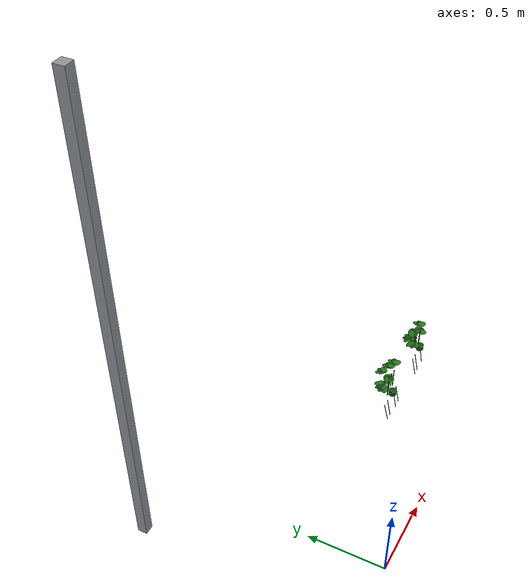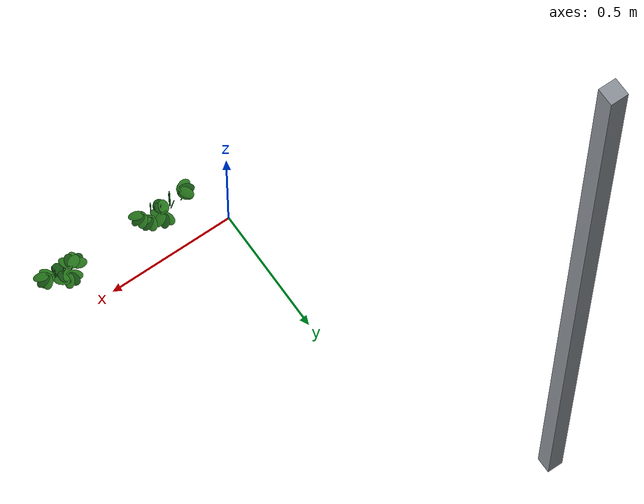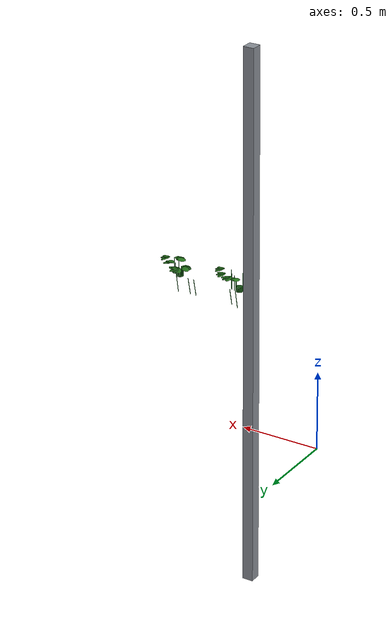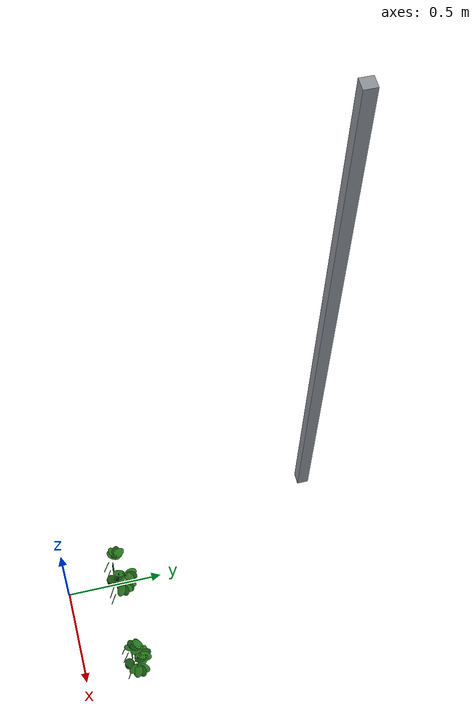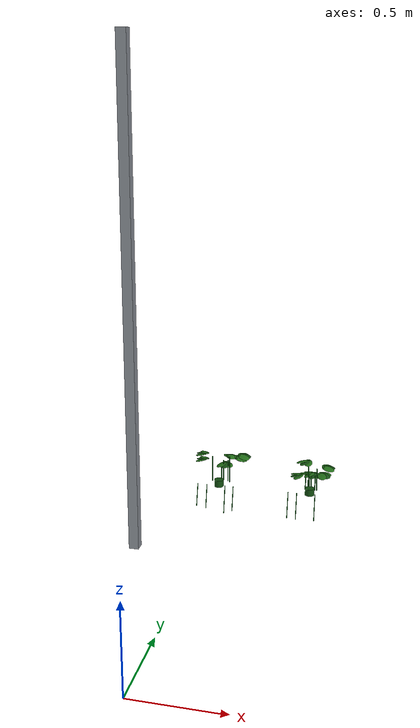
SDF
<sdf version="1.8">
 <world name="strawberry_greenhouse">
  <model name="post_0b">
   <static>true</static>
   <pose>-0.4000 1.4000 1.5000 0.0000 0.0000 0.0000</pose>
   <link name="link">
    <visual name="v">
     <geometry><box><size>0.0600 0.0600 3.0000</size></box></geometry>
     <material>
      <ambient>0.550 0.570 0.600 1</ambient>
      <diffuse>0.550 0.570 0.600 1</diffuse>
      <specular>0.1 0.1 0.1 1</specular>
     </material>
    </visual>
   </link>
  </model>
  <model name="plant_0">
   <static>true</static>
   <pose>0.4000 0.2100 1.0200 0.0000 0.0000 0.0000</pose>
   <link name="crown">
    <inertial>
     <mass>0.3</mass>
     <inertia>
      <ixx>1.250e-04</ixx>
      <iyy>1.250e-04</iyy>
      <izz>1.250e-04</izz>
      <ixy>0</ixy>
      <ixz>0</ixz>
      <iyz>0</iyz>
     </inertia>
    </inertial>
    <visual name="crown">
     <geometry><cylinder><radius>0.0200</radius><length>0.0300</length></cylinder></geometry>
     <material>
      <ambient>0.080 0.320 0.070 1</ambient>
      <diffuse>0.080 0.320 0.070 1</diffuse>
      <specular>0.1 0.1 0.1 1</specular>
     </material>
    </visual>
    <visual name="petiole_0">
     <pose>-0.0325 0.0180 0.0573 0.0000 0.0000 0.0000</pose>
     <geometry><cylinder><radius>0.0020</radius><length>0.1147</length></cylinder></geometry>
     <material>
      <ambient>0.100 0.500 0.120 1</ambient>
      <diffuse>0.100 0.500 0.120 1</diffuse>
      <specular>0.1 0.1 0.1 1</specular>
     </material>
    </visual>
    <visual name="leaf_0_0">
     <pose>-0.0758 0.0529 0.1147 0.2000 0.1500 2.1424</pose>
     <geometry><ellipsoid><radii>0.0280 0.0180 0.0030</radii></ellipsoid></geometry>
     <material>
      <ambient>0.140 0.450 0.100 1</ambient>
      <diffuse>0.140 0.450 0.100 1</diffuse>
      <specular>0.1 0.1 0.1 1</specular>
     </material>
    </visual>
    <visual name="leaf_0_1">
     <pose>-0.0841 0.0419 0.1147 0.2000 0.1500 2.8424</pose>
     <geometry><ellipsoid><radii>0.0280 0.0180 0.0030</radii></ellipsoid></geometry>
     <material>
      <ambient>0.080 0.320 0.070 1</ambient>
      <diffuse>0.080 0.320 0.070 1</diffuse>
      <specular>0.1 0.1 0.1 1</specular>
     </material>
    </visual>
    <visual name="leaf_0_2">
     <pose>-0.0834 0.0282 0.1147 0.2000 0.1500 3.5424</pose>
     <geometry><ellipsoid><radii>0.0280 0.0180 0.0030</radii></ellipsoid></geometry>
     <material>
      <ambient>0.140 0.450 0.100 1</ambient>
      <diffuse>0.140 0.450 0.100 1</diffuse>
      <specular>0.1 0.1 0.1 1</specular>
     </material>
    </visual>
    <visual name="petiole_1">
     <pose>-0.0319 0.0156 0.0456 0.0000 0.0000 0.0000</pose>
     <geometry><cylinder><radius>0.0020</radius><length>0.0911</length></cylinder></geometry>
     <material>
      <ambient>0.100 0.500 0.120 1</ambient>
      <diffuse>0.100 0.500 0.120 1</diffuse>
      <specular>0.1 0.1 0.1 1</specular>
     </material>
    </visual>
    <visual name="leaf_1_0">
     <pose>-0.0761 0.0471 0.0911 0.2000 0.1500 2.2258</pose>
     <geometry><ellipsoid><radii>0.0280 0.0180 0.0030</radii></ellipsoid></geometry>
     <material>
      <ambient>0.140 0.450 0.100 1</ambient>
      <diffuse>0.140 0.450 0.100 1</diffuse>
      <specular>0.1 0.1 0.1 1</specular>
     </material>
    </visual>
    <visual name="leaf_1_1">
     <pose>-0.0834 0.0355 0.0911 0.2000 0.1500 2.9258</pose>
     <geometry><ellipsoid><radii>0.0280 0.0180 0.0030</radii></ellipsoid></geometry>
     <material>
      <ambient>0.080 0.320 0.070 1</ambient>
      <diffuse>0.080 0.320 0.070 1</diffuse>
      <specular>0.1 0.1 0.1 1</specular>
     </material>
    </visual>
    <visual name="leaf_1_2">
     <pose>-0.0816 0.0219 0.0911 0.2000 0.1500 3.6258</pose>
     <geometry><ellipsoid><radii>0.0280 0.0180 0.0030</radii></ellipsoid></geometry>
     <material>
      <ambient>0.140 0.450 0.100 1</ambient>
      <diffuse>0.140 0.450 0.100 1</diffuse>
      <specular>0.1 0.1 0.1 1</specular>
     </material>
    </visual>
    <visual name="petiole_2">
     <pose>0.0131 0.0341 0.0470 0.0000 0.0000 0.0000</pose>
     <geometry><cylinder><radius>0.0020</radius><length>0.0941</length></cylinder></geometry>
     <material>
      <ambient>0.100 0.500 0.120 1</ambient>
      <diffuse>0.100 0.500 0.120 1</diffuse>
      <specular>0.1 0.1 0.1 1</specular>
     </material>
    </visual>
    <visual name="leaf_2_0">
     <pose>0.0441 0.0770 0.0941 0.2000 0.1500 0.4603</pose>
     <geometry><ellipsoid><radii>0.0280 0.0180 0.0030</radii></ellipsoid></geometry>
     <material>
      <ambient>0.140 0.450 0.100 1</ambient>
      <diffuse>0.140 0.450 0.100 1</diffuse>
      <specular>0.1 0.1 0.1 1</specular>
     </material>
    </visual>
    <visual name="leaf_2_1">
     <pose>0.0342 0.0865 0.0941 0.2000 0.1500 1.1603</pose>
     <geometry><ellipsoid><radii>0.0280 0.0180 0.0030</radii></ellipsoid></geometry>
     <material>
      <ambient>0.080 0.320 0.070 1</ambient>
      <diffuse>0.080 0.320 0.070 1</diffuse>
      <specular>0.1 0.1 0.1 1</specular>
     </material>
    </visual>
    <visual name="leaf_2_2">
     <pose>0.0205 0.0873 0.0941 0.2000 0.1500 1.8603</pose>
     <geometry><ellipsoid><radii>0.0280 0.0180 0.0030</radii></ellipsoid></geometry>
     <material>
      <ambient>0.140 0.450 0.100 1</ambient>
      <diffuse>0.140 0.450 0.100 1</diffuse>
      <specular>0.1 0.1 0.1 1</specular>
     </material>
    </visual>
    <visual name="petiole_3">
     <pose>0.0060 0.0272 0.0356 0.0000 0.0000 0.0000</pose>
     <geometry><cylinder><radius>0.0020</radius><length>0.0712</length></cylinder></geometry>
     <material>
      <ambient>0.100 0.500 0.120 1</ambient>
      <diffuse>0.100 0.500 0.120 1</diffuse>
      <specular>0.1 0.1 0.1 1</specular>
     </material>
    </visual>
    <visual name="leaf_3_0">
     <pose>0.0036 0.0363 0.0712 0.2000 0.1500 4.2824</pose>
     <geometry><ellipsoid><radii>0.0280 0.0180 0.0030</radii></ellipsoid></geometry>
     <material>
      <ambient>0.140 0.450 0.100 1</ambient>
      <diffuse>0.140 0.450 0.100 1</diffuse>
      <specular>0.1 0.1 0.1 1</specular>
     </material>
    </visual>
    <visual name="leaf_3_1">
     <pose>0.0173 0.0352 0.0712 0.2000 0.1500 4.9824</pose>
     <geometry><ellipsoid><radii>0.0280 0.0180 0.0030</radii></ellipsoid></geometry>
     <material>
      <ambient>0.080 0.320 0.070 1</ambient>
      <diffuse>0.080 0.320 0.070 1</diffuse>
      <specular>0.1 0.1 0.1 1</specular>
     </material>
    </visual>
    <visual name="leaf_3_2">
     <pose>0.0284 0.0432 0.0712 0.2000 0.1500 5.6824</pose>
     <geometry><ellipsoid><radii>0.0280 0.0180 0.0030</radii></ellipsoid></geometry>
     <material>
      <ambient>0.140 0.450 0.100 1</ambient>
      <diffuse>0.140 0.450 0.100 1</diffuse>
      <specular>0.1 0.1 0.1 1</specular>
     </material>
    </visual>
    <visual name="petiole_4">
     <pose>0.0339 0.0274 0.0493 0.0000 0.0000 0.0000</pose>
     <geometry><cylinder><radius>0.0020</radius><length>0.0985</length></cylinder></geometry>
     <material>
      <ambient>0.100 0.500 0.120 1</ambient>
      <diffuse>0.100 0.500 0.120 1</diffuse>
      <specular>0.1 0.1 0.1 1</specular>
     </material>
    </visual>
    <visual name="leaf_4_0">
     <pose>0.0876 0.0521 0.0985 0.2000 0.1500 -0.1303</pose>
     <geometry><ellipsoid><radii>0.0280 0.0180 0.0030</radii></ellipsoid></geometry>
     <material>
      <ambient>0.140 0.450 0.100 1</ambient>
      <diffuse>0.140 0.450 0.100 1</diffuse>
      <specular>0.1 0.1 0.1 1</specular>
     </material>
    </visual>
    <visual name="leaf_4_1">
     <pose>0.0846 0.0655 0.0985 0.2000 0.1500 0.5697</pose>
     <geometry><ellipsoid><radii>0.0280 0.0180 0.0030</radii></ellipsoid></geometry>
     <material>
      <ambient>0.080 0.320 0.070 1</ambient>
      <diffuse>0.080 0.320 0.070 1</diffuse>
      <specular>0.1 0.1 0.1 1</specular>
     </material>
    </visual>
    <visual name="leaf_4_2">
     <pose>0.0737 0.0738 0.0985 0.2000 0.1500 1.2697</pose>
     <geometry><ellipsoid><radii>0.0280 0.0180 0.0030</radii></ellipsoid></geometry>
     <material>
      <ambient>0.140 0.450 0.100 1</ambient>
      <diffuse>0.140 0.450 0.100 1</diffuse>
      <specular>0.1 0.1 0.1 1</specular>
     </material>
    </visual>
    <visual name="petiole_5">
     <pose>0.0430 0.0193 0.0588 0.0000 0.0000 0.0000</pose>
     <geometry><cylinder><radius>0.0020</radius><length>0.1175</length></cylinder></geometry>
     <material>
      <ambient>0.100 0.500 0.120 1</ambient>
      <diffuse>0.100 0.500 0.120 1</diffuse>
      <specular>0.1 0.1 0.1 1</specular>
     </material>
    </visual>
    <visual name="leaf_5_0">
     <pose>0.1042 0.0301 0.1175 0.2000 0.1500 -0.4369</pose>
     <geometry><ellipsoid><radii>0.0280 0.0180 0.0030</radii></ellipsoid></geometry>
     <material>
      <ambient>0.140 0.450 0.100 1</ambient>
      <diffuse>0.140 0.450 0.100 1</diffuse>
      <specular>0.1 0.1 0.1 1</specular>
     </material>
    </visual>
    <visual name="leaf_5_1">
     <pose>0.1054 0.0437 0.1175 0.2000 0.1500 0.2631</pose>
     <geometry><ellipsoid><radii>0.0280 0.0180 0.0030</radii></ellipsoid></geometry>
     <material>
      <ambient>0.080 0.320 0.070 1</ambient>
      <diffuse>0.080 0.320 0.070 1</diffuse>
      <specular>0.1 0.1 0.1 1</specular>
     </material>
    </visual>
    <visual name="leaf_5_2">
     <pose>0.0975 0.0550 0.1175 0.2000 0.1500 0.9631</pose>
     <geometry><ellipsoid><radii>0.0280 0.0180 0.0030</radii></ellipsoid></geometry>
     <material>
      <ambient>0.140 0.450 0.100 1</ambient>
      <diffuse>0.140 0.450 0.100 1</diffuse>
      <specular>0.1 0.1 0.1 1</specular>
     </material>
    </visual>
    <visual name="peduncle_fruit_0">
     <pose>-0.0970 -0.0079 -0.0635 -0.2591 0.0000 0.0000</pose>
     <geometry><cylinder><radius>0.0015</radius><length>0.1004</length></cylinder></geometry>
     <material>
      <ambient>0.100 0.500 0.120 1</ambient>
      <diffuse>0.100 0.500 0.120 1</diffuse>
      <specular>0.1 0.1 0.1 1</specular>
     </material>
    </visual>
    <visual name="peduncle_fruit_1">
     <pose>-0.0556 -0.0067 -0.0671 -0.2208 0.0000 0.0000</pose>
     <geometry><cylinder><radius>0.0015</radius><length>0.1068</length></cylinder></geometry>
     <material>
      <ambient>0.100 0.500 0.120 1</ambient>
      <diffuse>0.100 0.500 0.120 1</diffuse>
      <specular>0.1 0.1 0.1 1</specular>
     </material>
    </visual>
    <visual name="peduncle_fruit_2">
     <pose>0.0257 -0.0068 -0.0744 -0.1963 0.0000 0.0000</pose>
     <geometry><cylinder><radius>0.0015</radius><length>0.1212</length></cylinder></geometry>
     <material>
      <ambient>0.100 0.500 0.120 1</ambient>
      <diffuse>0.100 0.500 0.120 1</diffuse>
      <specular>0.1 0.1 0.1 1</specular>
     </material>
    </visual>
    <visual name="peduncle_fruit_3">
     <pose>0.0625 -0.0064 -0.0676 -0.2129 0.0000 0.0000</pose>
     <geometry><cylinder><radius>0.0015</radius><length>0.1076</length></cylinder></geometry>
     <material>
      <ambient>0.100 0.500 0.120 1</ambient>
      <diffuse>0.100 0.500 0.120 1</diffuse>
      <specular>0.1 0.1 0.1 1</specular>
     </material>
    </visual>
   </link>
   <plugin filename="ignition-gazebo-detachable-joint-system" name="ignition::gazebo::systems::DetachableJoint">
    <parent_link>crown</parent_link>
    <child_model>fruit_0</child_model>
    <child_link>link</child_link>
    <detach_topic>/agrobot/sim/fruit_0/detach_anchor</detach_topic>
   </plugin>
   <plugin filename="ignition-gazebo-detachable-joint-system" name="ignition::gazebo::systems::DetachableJoint">
    <parent_link>crown</parent_link>
    <child_model>fruit_1</child_model>
    <child_link>link</child_link>
    <detach_topic>/agrobot/sim/fruit_1/detach_anchor</detach_topic>
   </plugin>
   <plugin filename="ignition-gazebo-detachable-joint-system" name="ignition::gazebo::systems::DetachableJoint">
    <parent_link>crown</parent_link>
    <child_model>fruit_2</child_model>
    <child_link>link</child_link>
    <detach_topic>/agrobot/sim/fruit_2/detach_anchor</detach_topic>
   </plugin>
   <plugin filename="ignition-gazebo-detachable-joint-system" name="ignition::gazebo::systems::DetachableJoint">
    <parent_link>crown</parent_link>
    <child_model>fruit_3</child_model>
    <child_link>link</child_link>
    <detach_topic>/agrobot/sim/fruit_3/detach_anchor</detach_topic>
   </plugin>
  </model>
  <model name="plant_1">
   <static>true</static>
   <pose>0.8000 0.2100 1.0200 0.0000 0.0000 0.0000</pose>
   <link name="crown">
    <inertial>
     <mass>0.3</mass>
     <inertia>
      <ixx>1.250e-04</ixx>
      <iyy>1.250e-04</iyy>
      <izz>1.250e-04</izz>
      <ixy>0</ixy>
      <ixz>0</ixz>
      <iyz>0</iyz>
     </inertia>
    </inertial>
    <visual name="crown">
     <geometry><cylinder><radius>0.0200</radius><length>0.0300</length></cylinder></geometry>
     <material>
      <ambient>0.080 0.320 0.070 1</ambient>
      <diffuse>0.080 0.320 0.070 1</diffuse>
      <specular>0.1 0.1 0.1 1</specular>
     </material>
    </visual>
    <visual name="petiole_0">
     <pose>0.0201 0.0174 0.0339 0.0000 0.0000 0.0000</pose>
     <geometry><cylinder><radius>0.0020</radius><length>0.0678</length></cylinder></geometry>
     <material>
      <ambient>0.100 0.500 0.120 1</ambient>
      <diffuse>0.100 0.500 0.120 1</diffuse>
      <specular>0.1 0.1 0.1 1</specular>
     </material>
    </visual>
    <visual name="leaf_0_0">
     <pose>0.0487 0.0166 0.0678 0.2000 0.1500 5.1540</pose>
     <geometry><ellipsoid><radii>0.0280 0.0180 0.0030</radii></ellipsoid></geometry>
     <material>
      <ambient>0.140 0.450 0.100 1</ambient>
      <diffuse>0.140 0.450 0.100 1</diffuse>
      <specular>0.1 0.1 0.1 1</specular>
     </material>
    </visual>
    <visual name="leaf_0_1">
     <pose>0.0583 0.0264 0.0678 0.2000 0.1500 5.8540</pose>
     <geometry><ellipsoid><radii>0.0280 0.0180 0.0030</radii></ellipsoid></geometry>
     <material>
      <ambient>0.080 0.320 0.070 1</ambient>
      <diffuse>0.080 0.320 0.070 1</diffuse>
      <specular>0.1 0.1 0.1 1</specular>
     </material>
    </visual>
    <visual name="leaf_0_2">
     <pose>0.0594 0.0401 0.0678 0.2000 0.1500 6.5540</pose>
     <geometry><ellipsoid><radii>0.0280 0.0180 0.0030</radii></ellipsoid></geometry>
     <material>
      <ambient>0.140 0.450 0.100 1</ambient>
      <diffuse>0.140 0.450 0.100 1</diffuse>
      <specular>0.1 0.1 0.1 1</specular>
     </material>
    </visual>
    <visual name="petiole_1">
     <pose>0.0016 0.0362 0.0260 0.0000 0.0000 0.0000</pose>
     <geometry><cylinder><radius>0.0020</radius><length>0.0521</length></cylinder></geometry>
     <material>
      <ambient>0.100 0.500 0.120 1</ambient>
      <diffuse>0.100 0.500 0.120 1</diffuse>
      <specular>0.1 0.1 0.1 1</specular>
     </material>
    </visual>
    <visual name="leaf_1_0">
     <pose>-0.0088 0.0565 0.0521 0.2000 0.1500 4.0626</pose>
     <geometry><ellipsoid><radii>0.0280 0.0180 0.0030</radii></ellipsoid></geometry>
     <material>
      <ambient>0.140 0.450 0.100 1</ambient>
      <diffuse>0.140 0.450 0.100 1</diffuse>
      <specular>0.1 0.1 0.1 1</specular>
     </material>
    </visual>
    <visual name="leaf_1_1">
     <pose>0.0043 0.0525 0.0521 0.2000 0.1500 4.7626</pose>
     <geometry><ellipsoid><radii>0.0280 0.0180 0.0030</radii></ellipsoid></geometry>
     <material>
      <ambient>0.080 0.320 0.070 1</ambient>
      <diffuse>0.080 0.320 0.070 1</diffuse>
      <specular>0.1 0.1 0.1 1</specular>
     </material>
    </visual>
    <visual name="leaf_1_2">
     <pose>0.0169 0.0578 0.0521 0.2000 0.1500 5.4626</pose>
     <geometry><ellipsoid><radii>0.0280 0.0180 0.0030</radii></ellipsoid></geometry>
     <material>
      <ambient>0.140 0.450 0.100 1</ambient>
      <diffuse>0.140 0.450 0.100 1</diffuse>
      <specular>0.1 0.1 0.1 1</specular>
     </material>
    </visual>
    <visual name="petiole_2">
     <pose>-0.0209 0.0170 0.0288 0.0000 0.0000 0.0000</pose>
     <geometry><cylinder><radius>0.0020</radius><length>0.0575</length></cylinder></geometry>
     <material>
      <ambient>0.100 0.500 0.120 1</ambient>
      <diffuse>0.100 0.500 0.120 1</diffuse>
      <specular>0.1 0.1 0.1 1</specular>
     </material>
    </visual>
    <visual name="leaf_2_0">
     <pose>-0.0610 0.0400 0.0575 0.2000 0.1500 2.8383</pose>
     <geometry><ellipsoid><radii>0.0280 0.0180 0.0030</radii></ellipsoid></geometry>
     <material>
      <ambient>0.140 0.450 0.100 1</ambient>
      <diffuse>0.140 0.450 0.100 1</diffuse>
      <specular>0.1 0.1 0.1 1</specular>
     </material>
    </visual>
    <visual name="leaf_2_1">
     <pose>-0.0603 0.0263 0.0575 0.2000 0.1500 3.5383</pose>
     <geometry><ellipsoid><radii>0.0280 0.0180 0.0030</radii></ellipsoid></geometry>
     <material>
      <ambient>0.080 0.320 0.070 1</ambient>
      <diffuse>0.080 0.320 0.070 1</diffuse>
      <specular>0.1 0.1 0.1 1</specular>
     </material>
    </visual>
    <visual name="leaf_2_2">
     <pose>-0.0510 0.0162 0.0575 0.2000 0.1500 4.2383</pose>
     <geometry><ellipsoid><radii>0.0280 0.0180 0.0030</radii></ellipsoid></geometry>
     <material>
      <ambient>0.140 0.450 0.100 1</ambient>
      <diffuse>0.140 0.450 0.100 1</diffuse>
      <specular>0.1 0.1 0.1 1</specular>
     </material>
    </visual>
    <visual name="petiole_3">
     <pose>-0.0055 0.0268 0.0256 0.0000 0.0000 0.0000</pose>
     <geometry><cylinder><radius>0.0020</radius><length>0.0512</length></cylinder></geometry>
     <material>
      <ambient>0.100 0.500 0.120 1</ambient>
      <diffuse>0.100 0.500 0.120 1</diffuse>
      <specular>0.1 0.1 0.1 1</specular>
     </material>
    </visual>
    <visual name="leaf_3_0">
     <pose>-0.0024 0.0716 0.0512 0.2000 0.1500 1.1278</pose>
     <geometry><ellipsoid><radii>0.0280 0.0180 0.0030</radii></ellipsoid></geometry>
     <material>
      <ambient>0.140 0.450 0.100 1</ambient>
      <diffuse>0.140 0.450 0.100 1</diffuse>
      <specular>0.1 0.1 0.1 1</specular>
     </material>
    </visual>
    <visual name="leaf_3_1">
     <pose>-0.0161 0.0729 0.0512 0.2000 0.1500 1.8278</pose>
     <geometry><ellipsoid><radii>0.0280 0.0180 0.0030</radii></ellipsoid></geometry>
     <material>
      <ambient>0.080 0.320 0.070 1</ambient>
      <diffuse>0.080 0.320 0.070 1</diffuse>
      <specular>0.1 0.1 0.1 1</specular>
     </material>
    </visual>
    <visual name="leaf_3_2">
     <pose>-0.0274 0.0651 0.0512 0.2000 0.1500 2.5278</pose>
     <geometry><ellipsoid><radii>0.0280 0.0180 0.0030</radii></ellipsoid></geometry>
     <material>
      <ambient>0.140 0.450 0.100 1</ambient>
      <diffuse>0.140 0.450 0.100 1</diffuse>
      <specular>0.1 0.1 0.1 1</specular>
     </material>
    </visual>
    <visual name="petiole_4">
     <pose>-0.0101 0.0286 0.0574 0.0000 0.0000 0.0000</pose>
     <geometry><cylinder><radius>0.0020</radius><length>0.1149</length></cylinder></geometry>
     <material>
      <ambient>0.100 0.500 0.120 1</ambient>
      <diffuse>0.100 0.500 0.120 1</diffuse>
      <specular>0.1 0.1 0.1 1</specular>
     </material>
    </visual>
    <visual name="leaf_4_0">
     <pose>-0.0381 0.0483 0.1149 0.2000 0.1500 3.6033</pose>
     <geometry><ellipsoid><radii>0.0280 0.0180 0.0030</radii></ellipsoid></geometry>
     <material>
      <ambient>0.140 0.450 0.100 1</ambient>
      <diffuse>0.140 0.450 0.100 1</diffuse>
      <specular>0.1 0.1 0.1 1</specular>
     </material>
    </visual>
    <visual name="leaf_4_1">
     <pose>-0.0281 0.0388 0.1149 0.2000 0.1500 4.3033</pose>
     <geometry><ellipsoid><radii>0.0280 0.0180 0.0030</radii></ellipsoid></geometry>
     <material>
      <ambient>0.080 0.320 0.070 1</ambient>
      <diffuse>0.080 0.320 0.070 1</diffuse>
      <specular>0.1 0.1 0.1 1</specular>
     </material>
    </visual>
    <visual name="leaf_4_2">
     <pose>-0.0144 0.0380 0.1149 0.2000 0.1500 5.0033</pose>
     <geometry><ellipsoid><radii>0.0280 0.0180 0.0030</radii></ellipsoid></geometry>
     <material>
      <ambient>0.140 0.450 0.100 1</ambient>
      <diffuse>0.140 0.450 0.100 1</diffuse>
      <specular>0.1 0.1 0.1 1</specular>
     </material>
    </visual>
    <visual name="petiole_5">
     <pose>0.0278 0.0176 0.0498 0.0000 0.0000 0.0000</pose>
     <geometry><cylinder><radius>0.0020</radius><length>0.0996</length></cylinder></geometry>
     <material>
      <ambient>0.100 0.500 0.120 1</ambient>
      <diffuse>0.100 0.500 0.120 1</diffuse>
      <specular>0.1 0.1 0.1 1</specular>
     </material>
    </visual>
    <visual name="leaf_5_0">
     <pose>0.0743 0.0279 0.0996 0.2000 0.1500 -0.3712</pose>
     <geometry><ellipsoid><radii>0.0280 0.0180 0.0030</radii></ellipsoid></geometry>
     <material>
      <ambient>0.140 0.450 0.100 1</ambient>
      <diffuse>0.140 0.450 0.100 1</diffuse>
      <specular>0.1 0.1 0.1 1</specular>
     </material>
    </visual>
    <visual name="leaf_5_1">
     <pose>0.0746 0.0416 0.0996 0.2000 0.1500 0.3288</pose>
     <geometry><ellipsoid><radii>0.0280 0.0180 0.0030</radii></ellipsoid></geometry>
     <material>
      <ambient>0.080 0.320 0.070 1</ambient>
      <diffuse>0.080 0.320 0.070 1</diffuse>
      <specular>0.1 0.1 0.1 1</specular>
     </material>
    </visual>
    <visual name="leaf_5_2">
     <pose>0.0659 0.0523 0.0996 0.2000 0.1500 1.0288</pose>
     <geometry><ellipsoid><radii>0.0280 0.0180 0.0030</radii></ellipsoid></geometry>
     <material>
      <ambient>0.140 0.450 0.100 1</ambient>
      <diffuse>0.140 0.450 0.100 1</diffuse>
      <specular>0.1 0.1 0.1 1</specular>
     </material>
    </visual>
    <visual name="peduncle_fruit_4">
     <pose>-0.0937 -0.0077 -0.0703 -0.2247 0.0000 0.0000</pose>
     <geometry><cylinder><radius>0.0015</radius><length>0.1135</length></cylinder></geometry>
     <material>
      <ambient>0.100 0.500 0.120 1</ambient>
      <diffuse>0.100 0.500 0.120 1</diffuse>
      <specular>0.1 0.1 0.1 1</specular>
     </material>
    </visual>
    <visual name="peduncle_fruit_5">
     <pose>-0.0559 -0.0075 -0.0714 -0.2185 0.0000 0.0000</pose>
     <geometry><cylinder><radius>0.0015</radius><length>0.1156</length></cylinder></geometry>
     <material>
      <ambient>0.100 0.500 0.120 1</ambient>
      <diffuse>0.100 0.500 0.120 1</diffuse>
      <specular>0.1 0.1 0.1 1</specular>
     </material>
    </visual>
    <visual name="peduncle_fruit_6">
     <pose>0.0230 -0.0048 -0.0723 -0.1697 0.0000 0.0000</pose>
     <geometry><cylinder><radius>0.0015</radius><length>0.1162</length></cylinder></geometry>
     <material>
      <ambient>0.100 0.500 0.120 1</ambient>
      <diffuse>0.100 0.500 0.120 1</diffuse>
      <specular>0.1 0.1 0.1 1</specular>
     </material>
    </visual>
   </link>
   <plugin filename="ignition-gazebo-detachable-joint-system" name="ignition::gazebo::systems::DetachableJoint">
    <parent_link>crown</parent_link>
    <child_model>fruit_4</child_model>
    <child_link>link</child_link>
    <detach_topic>/agrobot/sim/fruit_4/detach_anchor</detach_topic>
   </plugin>
   <plugin filename="ignition-gazebo-detachable-joint-system" name="ignition::gazebo::systems::DetachableJoint">
    <parent_link>crown</parent_link>
    <child_model>fruit_5</child_model>
    <child_link>link</child_link>
    <detach_topic>/agrobot/sim/fruit_5/detach_anchor</detach_topic>
   </plugin>
   <plugin filename="ignition-gazebo-detachable-joint-system" name="ignition::gazebo::systems::DetachableJoint">
    <parent_link>crown</parent_link>
    <child_model>fruit_6</child_model>
    <child_link>link</child_link>
    <detach_topic>/agrobot/sim/fruit_6/detach_anchor</detach_topic>
   </plugin>
  </model>
 </world>
</sdf>
